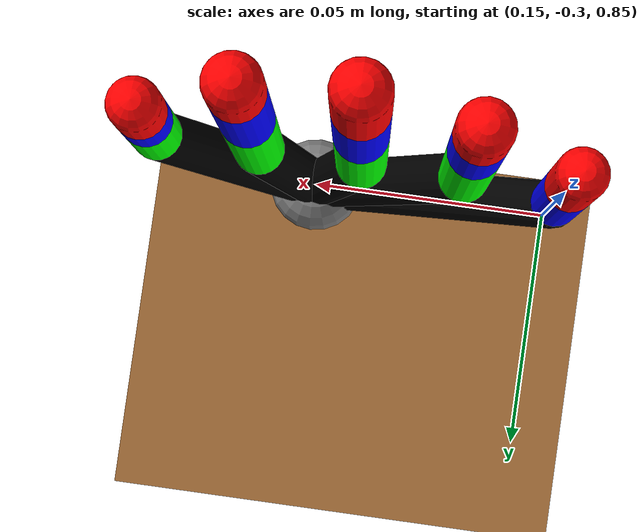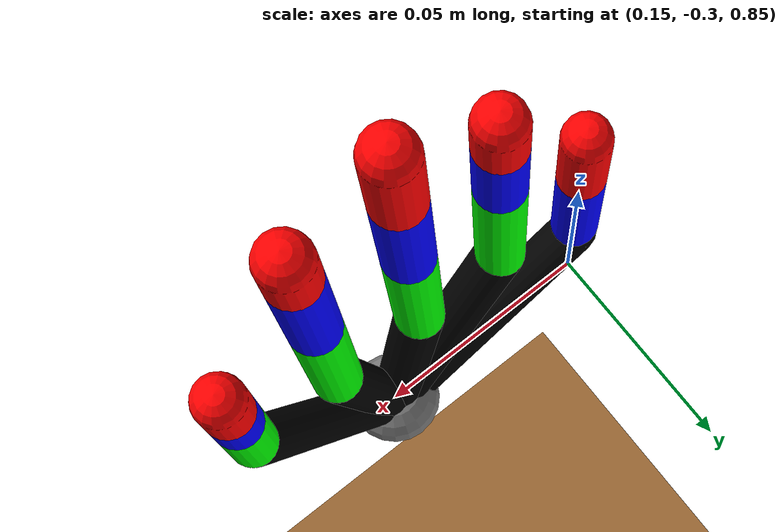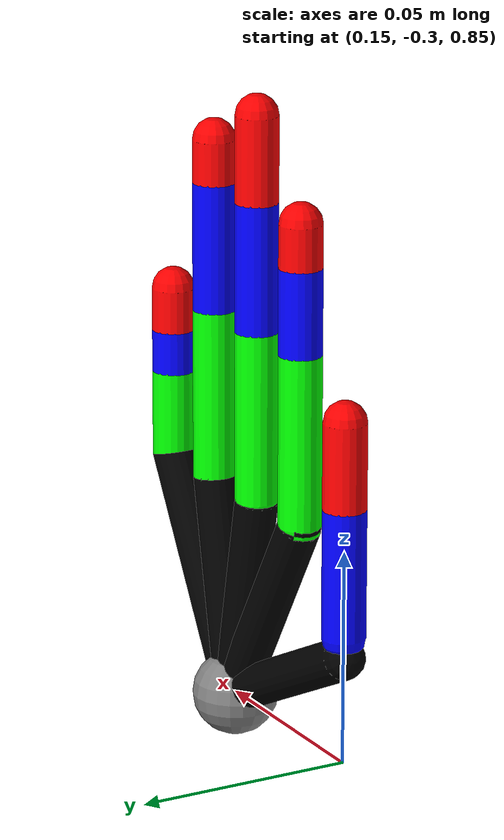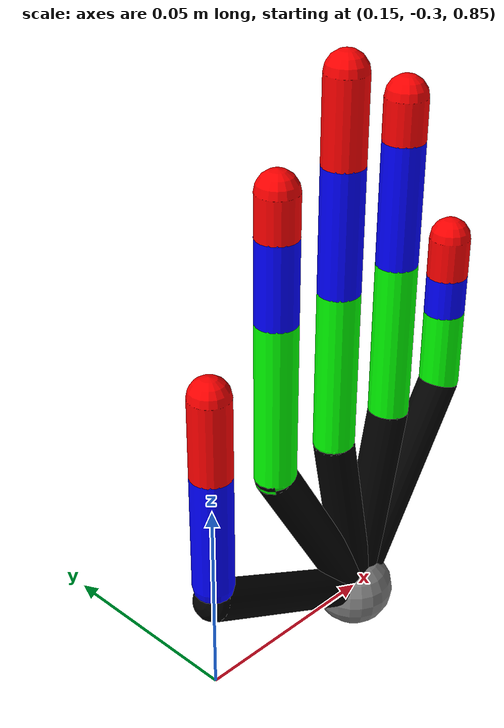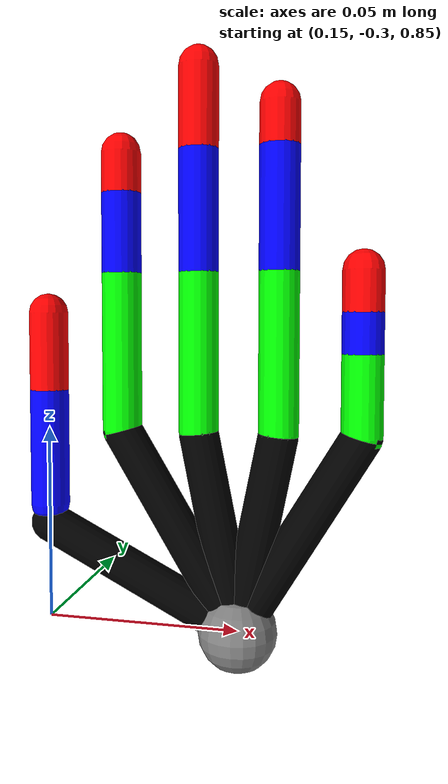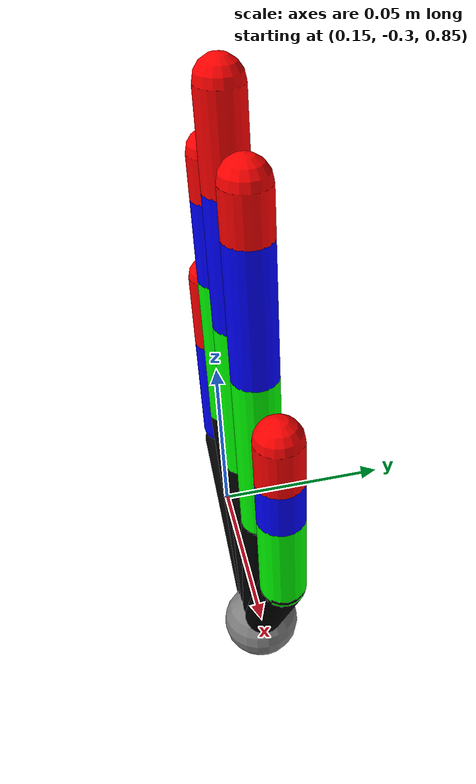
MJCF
<mujoco>
  <asset>
    <texture name="grid" type="2d" builtin="checker" rgb1=".1 .2 .3"
             rgb2=".2 .3 .4" width="300" height="300" mark="none"/>
    <material name="grid" texture="grid" texrepeat="1 1"
              texuniform="true" reflectance=".2"/>
  </asset>

  <worldbody>
    <light name="light" pos="0 0 2"/>
    <geom name="floor" type="plane" pos="0 0 -.5" size="4 4 .1" material="grid"/>
    <camera name="fixed" pos="0 -2 1" xyaxes="1 0 0 0 1 2"/>

    <!-- Table -->
    <body name="table" pos="0 0 0">
      <geom name="table_top" type="box" size="0.5 0.5 0.05" pos="0 0 0.45" rgba="0.6 0.4 0.2 1"/>
    </body>

    <!-- hand Gripper -->
    <body name="gripper_base" pos="0.2 -0.3 0.85">
      <joint name="gripper_x" type="slide" axis="1 0 0" range="-1 1" damping="5"/>
      <joint name="gripper_y" type="slide" axis="0 1 0" range="-1 1" damping="5"/>
      <joint name="gripper_z" type="slide" axis="0 0 1" range="-1 1" damping="5"/>
      <joint name="wrist_flex" type="hinge" axis="-1 0 0" range="-1 1" damping="1.0"/>
      <joint name="wrist_abduction" type="hinge" axis="0 1 0" range="-1 1" damping="1.0"/>
      <joint name="wrist_roll" type="hinge" axis="0 0 1" range="-1 1" damping="1.0"/>
      <geom type="sphere" size="0.01" mass="0.01" contype="0" conaffinity="0" rgba="0.5 0.5 0.5 1"/>

      <geom name="palm_connector_thumb" type="capsule" fromto="0 0 0  -0.05 0 0.025" size="0.005" rgba="0 0 0 1" mass="0.01"/>
      <geom name="palm_connector_index" type="capsule" fromto="0 0 0  -0.03 0 0.05" size="0.005" rgba="0 0 0 1" mass="0.01"/>
      <geom name="palm_connector_middle" type="capsule" fromto="0 0 0  -0.01 0 0.05" size="0.005" rgba="0 0 0 1" mass="0.01"/>
      <geom name="palm_connector_ring" type="capsule" fromto="0 0 0  0.01 0 0.05" size="0.005" rgba="0 0 0 1" mass="0.01"/>
      <geom name="palm_connector_pinky" type="capsule" fromto="0 0 0  0.03 0 0.05" size="0.005" rgba="0 0 0 1" mass="0.01"/>

      <!-- Thumb Finger -->
      <body name="thumb_mcp" pos="-0.05 0 0.03">
        <joint name="thumb_base" type="hinge" axis="0 -1 0" range="0 2.0944" damping="0.1"/>
        <joint name="thumb_mcp" type="hinge" axis="-1 0 0" range="0 2.0944" damping="0.1"/>
        <joint name="thumb_roll" type="hinge" axis="0 0 1" range="0 2.0944" damping="0.1"/>

        <geom type="capsule" size="0.005 0.03" fromto="0 0 0 0 0 0.03" rgba="0 0 1 1" mass="0.01" friction="1 0.1 0.1"/>

        <body name="thumb_ip" pos="0 0 0.03">
          <joint name="thumb_ip" type="hinge" axis="0 1 0" range="0 2.0944" damping="0.1"/>
          <geom type="capsule" size="0.005 0.03" fromto="0 0 0 0 0 0.02" rgba="1 0 0 1" mass="0.01" friction="1 0.1 0.1"/>
        </body>
      </body>

      <!-- Index Finger -->
      <body name="index_base" pos="-0.03 0 0.05">
        <joint name="index_mcp" type="hinge" axis="-1 0 0" range="0 2.0944" damping="1.5"/>
        <joint name="index_abd" type="hinge" axis="0 -1 0" range="0 2.0944" damping="1.5"/>
        <geom type="capsule" fromto="0 0 0 0 0 0.04" size="0.005" rgba="0 1 0 1" mass="0.1"/>

        <body name="index_pip" pos="0 0 0.04">
          <joint name="index_pip" type="hinge" axis="-1 0 0" range="0 2.0944" damping="0.1"/>
          <geom type="capsule" fromto="0 0 0 0 0 0.02" size="0.005" rgba="0 0 1 1" mass="0.01"/>

          <body name="index_dip" pos="0 0 0.02">
            <joint name="index_dip" type="hinge" axis="-1 0 0" range="0 2.0944" damping="0.1"/>
            <geom type="capsule" fromto="0 0 0 0 0 0.01" size="0.005" rgba="1 0 0 1" mass="0.01"/>
          </body>
        </body>
      </body>

      <!-- Middle Finger -->
      <body name="middle_base" pos="-0.01 0 0.05">
        <joint name="middle_mcp" type="hinge" axis="-1 0 0" range="0 2.0944" damping="0.1"/>
        <geom type="capsule" fromto="0 0 0 0 0 0.04" size="0.005" rgba="0 1 0 1" mass="0.01"/>

        <body name="middle_pip" pos="0 0 0.04">
          <joint name="middle_pip" type="hinge" axis="-1 0 0" range="0 2.0944" damping="0.1"/>
          <geom type="capsule" fromto="0 0 0 0 0 0.03" size="0.005" rgba="0 0 1 1" mass="0.01"/>

          <body name="middle_dip" pos="0 0 0.03">
            <joint name="middle_dip" type="hinge" axis="-1 0 0" range="0 2.0944" damping="0.1"/>
            <geom type="capsule" fromto="0 0 0 0 0 0.02" size="0.005" rgba="1 0 0 1" mass="0.01"/>
          </body>
        </body>
      </body>

      <!-- Ring Finger -->
      <body name="ring_base" pos="0.01 0 0.05">
        <joint name="ring_mcp" type="hinge" axis="-1 0 0" range="0 2.0944" damping="0.1"/>
        <joint name="ring_abd" type="hinge" axis="0 1 0" range="0 2.0944" damping="1.5"/>
        <geom type="capsule" fromto="0 0 0 0 0 0.04" size="0.005" rgba="0 1 0 1" mass="0.01"/>

        <body name="ring_pip" pos="0 0 0.04">
          <joint name="ring_pip" type="hinge" axis="-1 0 0" range="0 2.0944" damping="0.1"/>
          <geom type="capsule" fromto="0 0 0 0 0 0.03" size="0.005" rgba="0 0 1 1" mass="0.01"/>

          <body name="ring_dip" pos="0 0 0.03">
            <joint name="ring_dip" type="hinge" axis="-1 0 0" range="0 2.0944" damping="0.1"/>
            <geom type="capsule" fromto="0 0 0 0 0 0.01" size="0.005" rgba="1 0 0 1" mass="0.01"/>
          </body>
        </body>
      </body>

      <!-- Pinky Finger -->
      <body name="pinky_base" pos="0.03 0 0.05">
        <joint name="pinky_mcp" type="hinge" axis="-1 0 0" range="0 2.0944" damping="0.1"/>
        <joint name="pinky_abd" type="hinge" axis="0 1 0" range="0 2.0944" damping="0.1"/>
        <geom type="capsule" fromto="0 0 0 0 0 0.02" size="0.005" rgba="0 1 0 1" mass="0.01"/>

        <body name="pinky_pip" pos="0 0 0.02">
          <joint name="pinky_pip" type="hinge" axis="-1 0 0" range="0 2.0944" damping="0.1"/>
          <geom type="capsule" fromto="0 0 0 0 0 0.01" size="0.005" rgba="0 0 1 1" mass="0.01"/>

          <body name="pinky_dip" pos="0 0 0.01">
            <joint name="pinky_dip" type="hinge" axis="-1 0 0" range="0 2.0944" damping="0.1"/>
            <geom type="capsule" fromto="0 0 0 0 0 0.01" size="0.005" rgba="1 0 0 1" mass="0.01"/>
          </body>
        </body>
      </body>

    </body>

  </worldbody>

  <actuator>
    <!-- Gripper actuators -->
    <!-- IMU -->
    <position name="gripper_x_act" joint="gripper_x" ctrlrange="-1 1" kp="150"/>
    <position name="gripper_y_act" joint="gripper_y" ctrlrange="-1 1" kp="50"/>
    <position name="gripper_z_act" joint="gripper_z" ctrlrange="-1 1" kp="150"/>

    <position name="wrist_flex_pitch_act" joint="wrist_flex" ctrlrange="-1 1" kp="15"/>
    <position name="wrist_abduction_yaw_act" joint="wrist_abduction" ctrlrange="-1 1" kp="15"/>
    <position name="wrist_roll_act" joint="wrist_roll" ctrlrange="-1 1" kp="15"/>

    <position name="thumb_base_act" joint="thumb_base" ctrlrange="0 2" kp="15"/>
    <position name="thumb_roll_act" joint="thumb_roll" ctrlrange="0 2" kp="15"/>
    <position name="thumb_mcp_act" joint="thumb_mcp" ctrlrange="0 2" kp="15"/>
    <position name="thumb_ip_act" joint="thumb_ip" ctrlrange="0 2" kp="15"/>

    <position name="index_mcp_act" joint="index_mcp" ctrlrange="0 2" kp="15"/>
    <position name="index_abd_act" joint="index_abd" ctrlrange="0 2" kp="15"/>
    <position name="index_pip_act" joint="index_pip" ctrlrange="0 2" kp="15"/>
    <position name="index_dip_act" joint="index_dip" ctrlrange="0 2" kp="15"/>

    <position name="middle_mcp_act" joint="middle_mcp" ctrlrange="0 2" kp="15"/>
    <position name="middle_pip_act" joint="middle_pip" ctrlrange="0 2" kp="15"/>
    <position name="middle_dip_act" joint="middle_dip" ctrlrange="0 2" kp="15"/>

    <position name="ring_mcp_act" joint="ring_mcp" ctrlrange="0 2" kp="15"/>
    <position name="ring_abd_act" joint="ring_abd" ctrlrange="0 2" kp="15"/>
    <position name="ring_pip_act" joint="ring_pip" ctrlrange="0 2" kp="15"/>
    <position name="ring_dip_act" joint="ring_dip" ctrlrange="0 2" kp="15"/>

    <position name="pinky_mcp_act" joint="pinky_mcp" ctrlrange="0 2" kp="15"/>
    <position name="pinky_abd_act" joint="pinky_abd" ctrlrange="0 2" kp="15"/>
    <position name="pinky_pip_act" joint="pinky_pip" ctrlrange="0 2" kp="15"/>
    <position name="pinky_dip_act" joint="pinky_dip" ctrlrange="0 2" kp="15"/>
  </actuator>

</mujoco>
